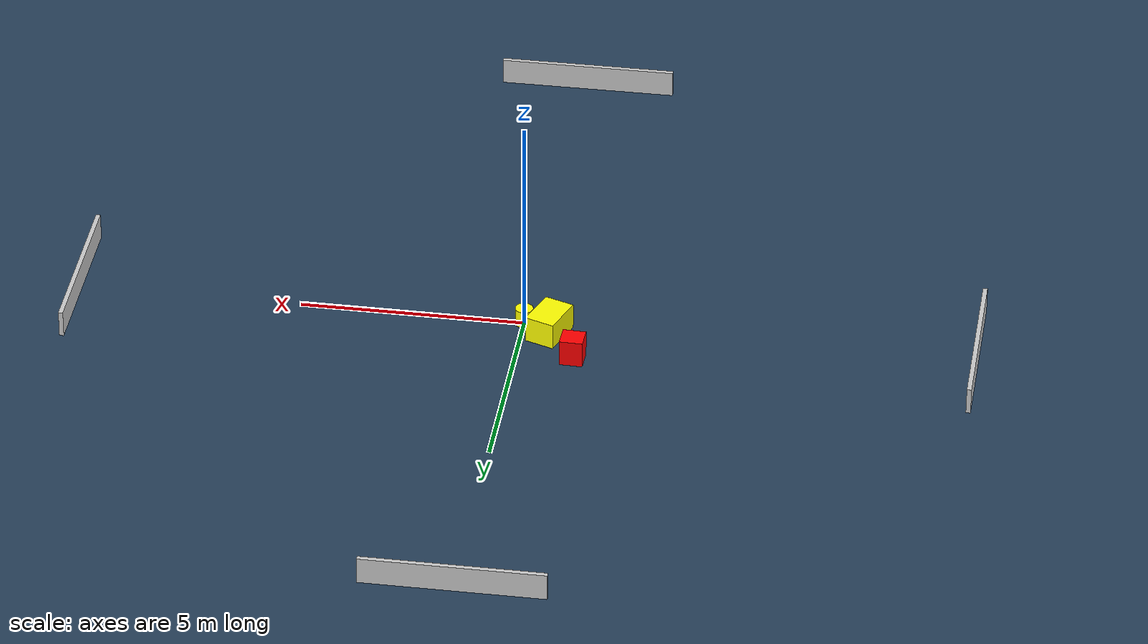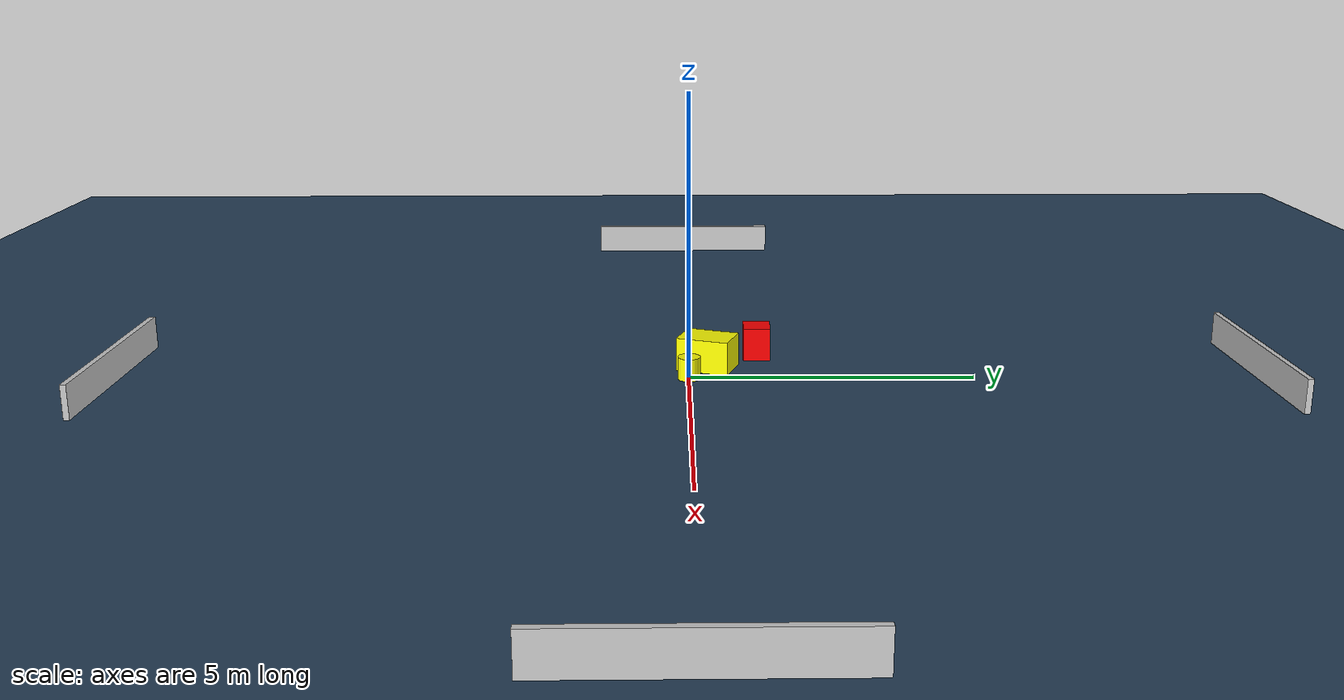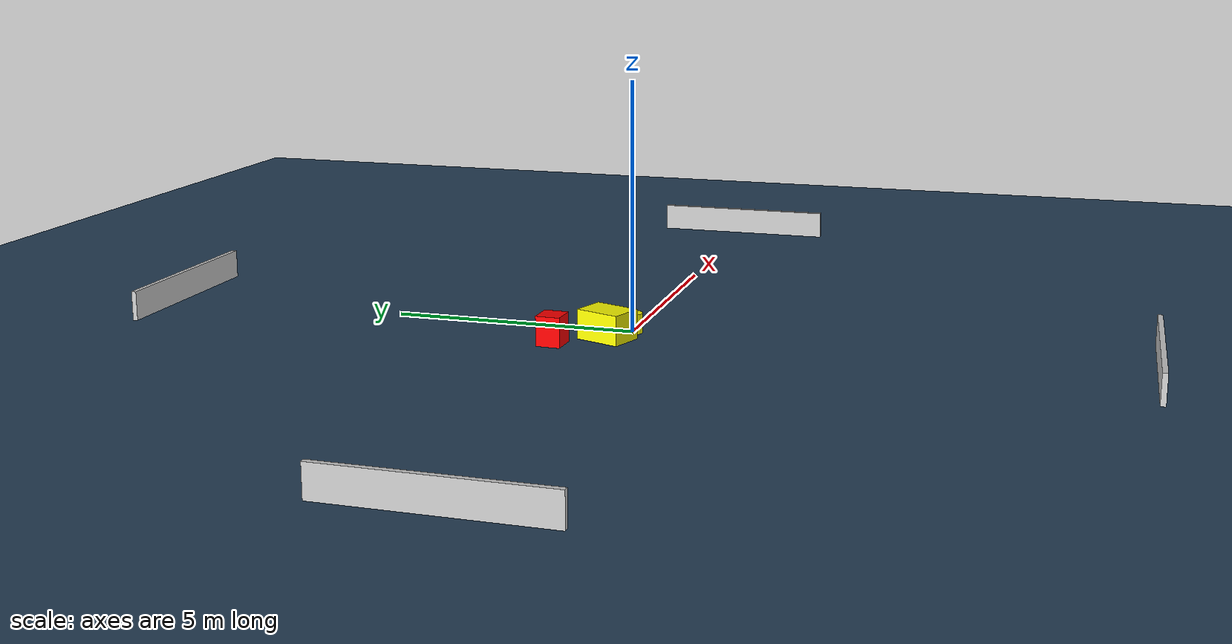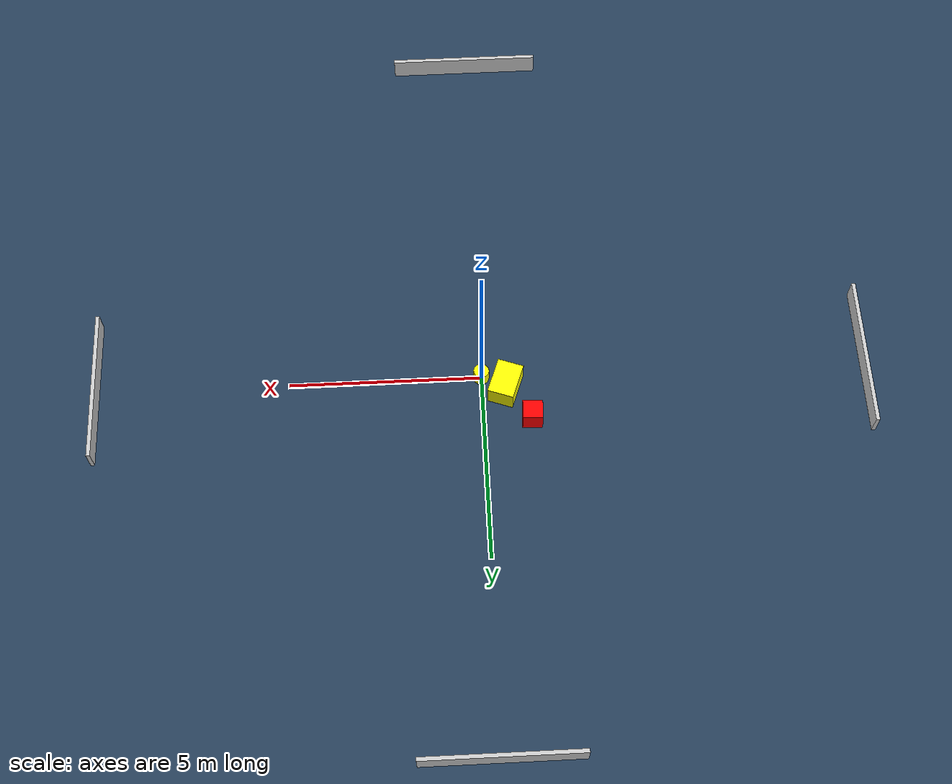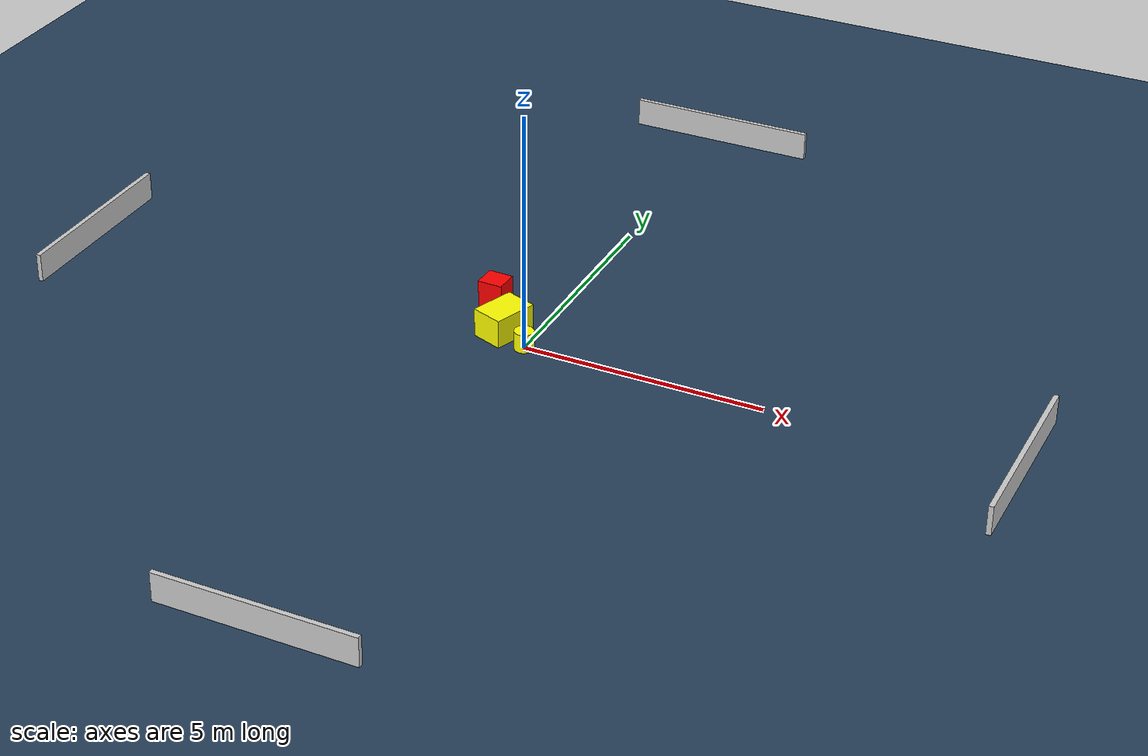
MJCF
<?xml version="1.0" ?>
<mujoco model="generated_environment">
  <option timestep="0.01" integrator="RK4" cone="elliptic"/>
  <default>
    <geom density="1"/>
  </default>
  <asset>
    <texture builtin="gradient" height="3072" name="skybox" rgb1="0.3 0.5 0.7" rgb2="0 0 0" type="skybox" width="512"/>
    <texture builtin="checker" height="300" name="groundplane" rgb1="0.2 0.3 0.4" rgb2="0.1 0.2 0.3" type="2d" width="300"/>
    <material name="groundplane" reflectance="0.2" texrepeat="5 5" texture="groundplane"/>
  </asset>
  <worldbody>
    <light dir="0 0 -1" directional="true" pos="0 0 1.5"/>
    <geom condim="3" friction="0.5 0.005 0.001" material="groundplane" name="floor" pos="0 0 0" size="0 0 0.05" type="plane"/>
    <body name="walls">
      <geom name="wall_1" condim="4" pos="-10.0 0.0 0.3" rgba="0.800000011920929 0.800000011920929 0.800000011920929 1.0" size="0.05 2.0 0.3" type="box"/>
      <geom name="wall_2" condim="4" pos="10.0 0.0 0.3" rgba="0.800000011920929 0.800000011920929 0.800000011920929 1.0" size="0.05 2.0 0.3" type="box"/>
      <geom name="wall_3" condim="4" pos="0.0 -10.0 0.3" rgba="0.800000011920929 0.800000011920929 0.800000011920929 1.0" size="2.0 0.05 0.3" type="box"/>
      <geom name="wall_4" condim="4" pos="0.0 10.0 0.3" rgba="0.800000011920929 0.800000011920929 0.800000011920929 1.0" size="2.0 0.05 0.3" type="box"/>
    </body>
    <body name="robot">
      <joint name="joint_x" type="slide" pos="0 0 0" axis="1 0 0"/>
      <joint name="joint_y" type="slide" pos="0 0 0" axis="0 1 0"/>
      <geom name="robot" type="cylinder" pos="0.0 0.0 0.2" size="0.2 0.2 0.0" mass="5.0" friction="1.0 0.005 0.0001" condim="4" rgba="1.0 1.0 0.0 1.0"/>
    </body>
    <body name="obstacle_1_movable">
      <geom name="obstacle_1_movable" condim="4" pos="-0.6094261834402126 0.33977539179316735 0.3" euler="0 0 69.92031779060622" friction="0.0 0.005 0.001" rgba="1.0 1.0 0.0 1.0" size="0.4739742420286551 0.34031268342573306 0.3" type="box" mass="0.1"/>
      <joint type="free"/>
    </body>
    <body name="obstacle_2_static">
      <geom name="obstacle_2_static" condim="4" pos="-1.2563389634570563 1.251897004909506 0.3" euler="0 0 358.12677164513553" friction="0.0 0.005 0.001" rgba="1.0 0.0 0.0 1.0" size="0.25730613107960365 0.24477594957478346 0.3" type="box"/>
    </body>
  </worldbody>
  <actuator>
    <motor name="actuator_x" joint="joint_x" gear="1" ctrlrange="-1 1"/>
    <motor name="actuator_y" joint="joint_y" gear="1" ctrlrange="-1 1"/>
  </actuator>
</mujoco>
